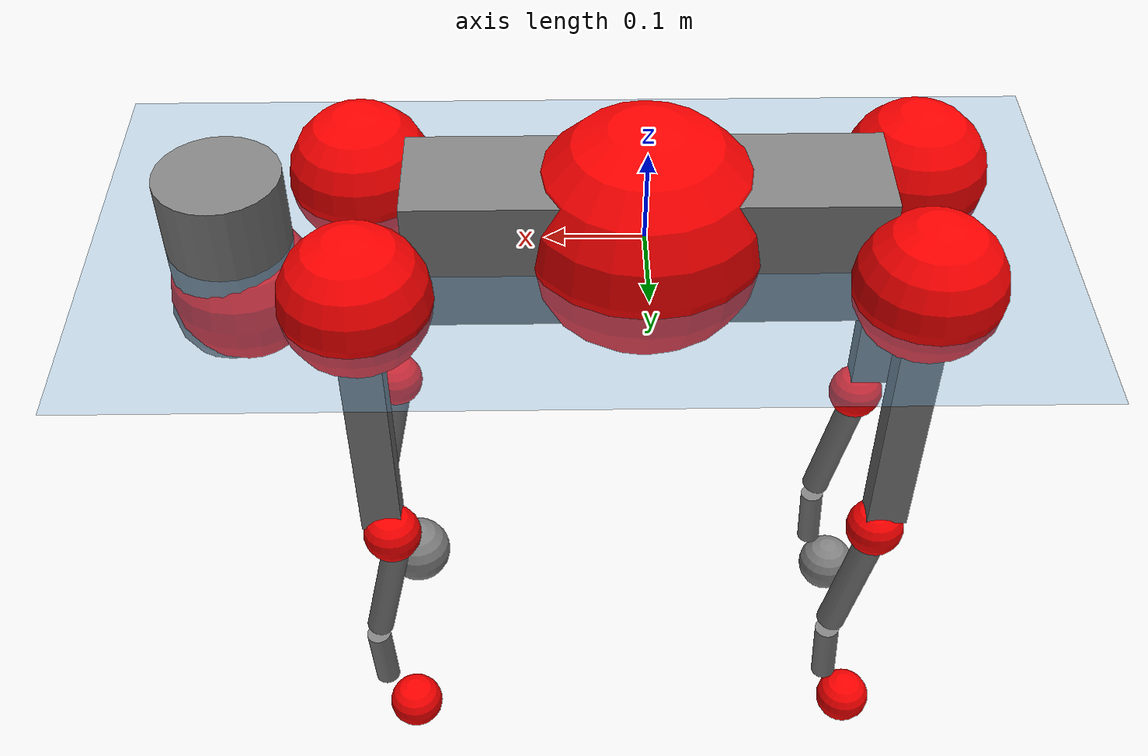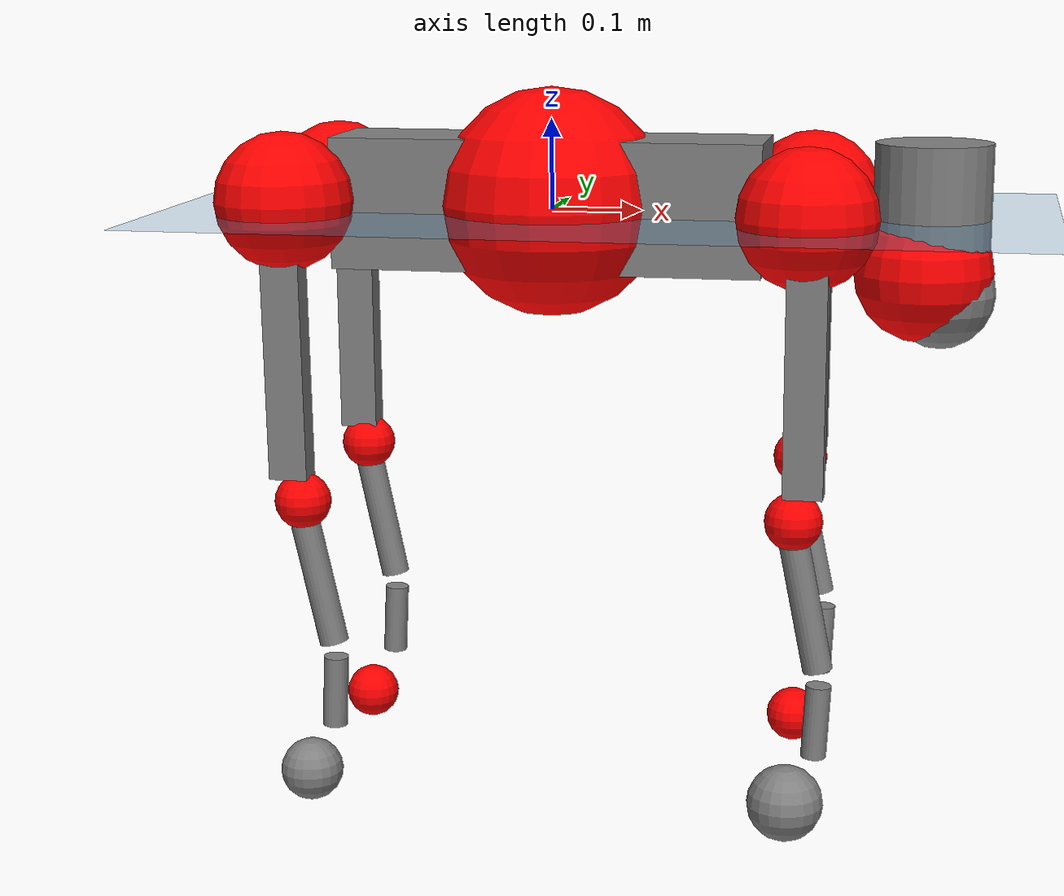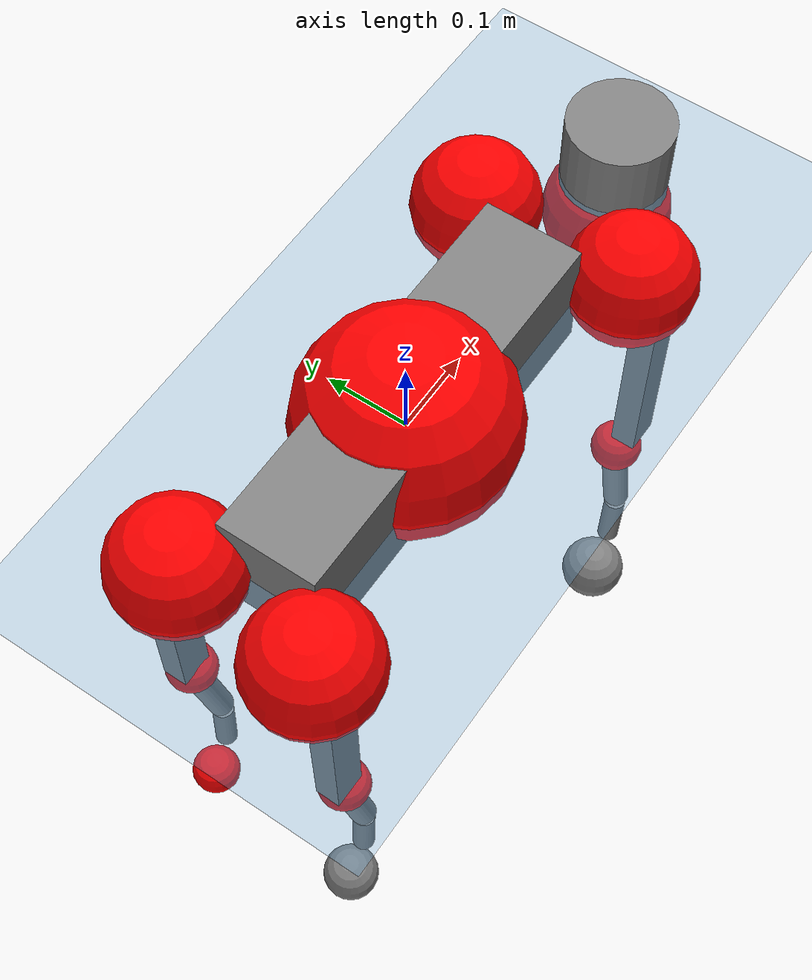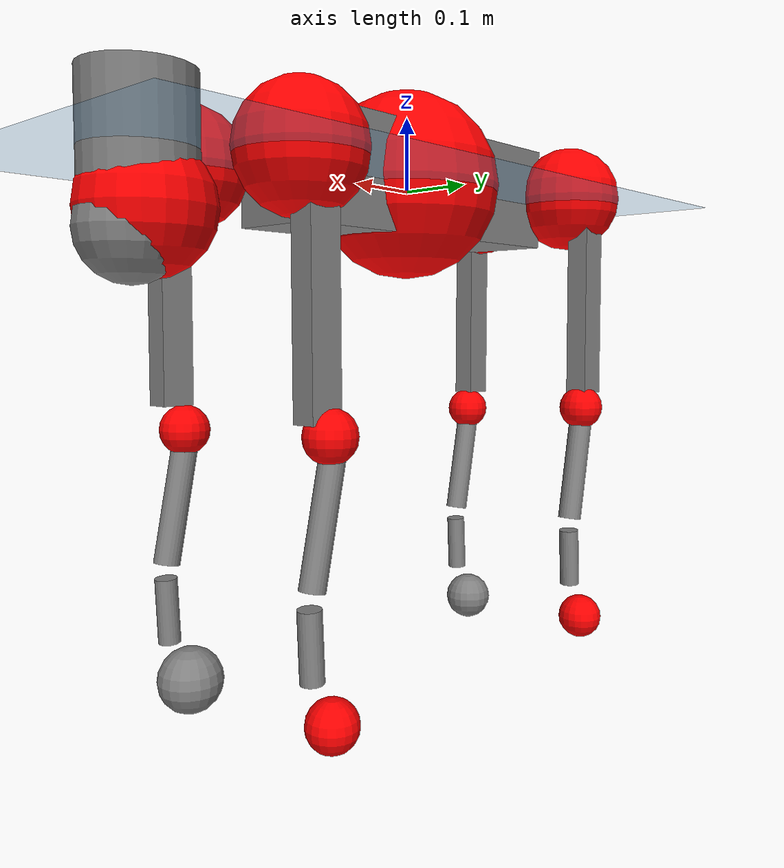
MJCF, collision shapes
<mujoco model="go2">
  <compiler angle="radian" assetdir="assets" balanceinertia="true" inertiafromgeom="false"/>

  <option timestep="0.005" density="1.2" viscosity="2e-05"/>

  <size nkey="1"/>

  <visual>
    <quality shadowsize="8192"/>
    <map shadowclip="0.5"/>
  </visual>

  <default>
    <default class="/">
      <geom contype="0" conaffinity="0" group="1" solref="-1000 -80"/>
      <site size="0.01 0.005 0.005" group="5"/>
      <general forcelimited="true" biastype="affine" gainprm="20" biasprm="0 -20 -0.5"/>
      <default class="go2">
        <joint armature="0.01" damping="0.01" frictionloss="0.2"/>
        <geom condim="1" margin="0.001"/>
        <default class="visual">
          <geom type="mesh" group="2"/>
        </default>
        <default class="collision">
          <geom group="3"/>
          <default class="foot">
            <geom size="0.022 0 0" condim="6" priority="1" friction="0.8 0.02 0.01" solimp="0.015 1 0.022"/>
          </default>
        </default>
        <default class="reward_collision_sphere">
          <geom group="5" rgba="1 0 0 1"/>
        </default>
      </default>
    </default>
  </default>

  <asset>
    <texture type="skybox" colorspace="auto" name="//unnamed_texture_0" builtin="gradient" rgb1="0.95 0.95 0.95" rgb2="0.95 0.95 0.95" width="100" height="600"/>
    <texture type="2d" colorspace="auto" name="texplane" builtin="checker" rgb1="0.345 0.575 0.748" rgb2="0.345 0.575 0.748" markrgb="1 1 1" width="512" height="512"/>
    <material name="MatPlane" class="/" texture="texplane" texuniform="true" texrepeat="2 2" specular="0.9"/>
    <material name="metal" class="/" rgba="0.9 0.95 0.95 1"/>
    <material name="black" class="/" rgba="0 0 0 1"/>
    <material name="white" class="/"/>
    <material name="gray" class="/" rgba="0.671705 0.692426 0.77427 1"/>
    <mesh name="base_0" class="/" file="base_0.obj"/>
    <mesh name="base_1" class="/" file="base_1.obj"/>
    <mesh name="base_2" class="/" file="base_2.obj"/>
    <mesh name="base_3" class="/" file="base_3.obj"/>
    <mesh name="base_4" class="/" file="base_4.obj"/>
    <mesh name="hip_0" class="/" file="hip_0.obj"/>
    <mesh name="hip_1" class="/" file="hip_1.obj"/>
    <mesh name="thigh_0" class="/" file="thigh_0.obj"/>
    <mesh name="thigh_1" class="/" file="thigh_1.obj"/>
    <mesh name="thigh_mirror_0" class="/" file="thigh_mirror_0.obj"/>
    <mesh name="thigh_mirror_1" class="/" file="thigh_mirror_1.obj"/>
    <mesh name="calf_0" class="/" file="calf_0.obj"/>
    <mesh name="calf_1" class="/" file="calf_1.obj"/>
    <mesh name="calf_mirror_0" class="/" file="calf_mirror_0.obj"/>
    <mesh name="calf_mirror_1" class="/" file="calf_mirror_1.obj"/>
    <mesh name="foot" class="/" file="foot.obj"/>
  </asset>

  <worldbody>
    <geom name="floor" class="/" size="100 100 0.125" type="plane" group="0" material="MatPlane"/>
    <light name="toplight_shadow" class="/" pos="0 0 5" dir="0.0990148 0.0990148 -0.990148" type="directional" ambient="0.04 0.04 0.04" diffuse="0.55 0.55 0.55" specular="0.12 0.12 0.12"/>
    <light name="toplight_fill" class="/" pos="0 0 5" dir="0.0990148 0.0990148 -0.990148" type="directional" castshadow="false" ambient="0.04 0.04 0.04" diffuse="0.3 0.3 0.3" specular="0.08 0.08 0.08"/>
    <body name="trunk" childclass="go2" pos="0.000112047 -0.00104228 0.00802677" quat="1 8.48379e-05 -3.36777e-07 9.44767e-05">
      <inertial pos="0.0402303 0.0108157 -0.0129629" quat="-0.00146538 0.713418 0.0168928 0.700534" mass="14.4161" diaginertia="0.600205 0.0334797 0.174268"/>
      <joint name="//unnamed_joint_0" type="free" armature="0" damping="0" frictionloss="0"/>
      <geom name="//unnamed_geom_1" class="visual" material="black" mesh="base_0"/>
      <geom name="//unnamed_geom_2" class="visual" material="black" mesh="base_1"/>
      <geom name="//unnamed_geom_3" class="visual" material="black" mesh="base_2"/>
      <geom name="//unnamed_geom_4" class="visual" material="white" mesh="base_3"/>
      <geom name="//unnamed_geom_5" class="visual" material="gray" mesh="base_4"/>
      <geom name="trunk_1" class="collision" size="0.239952 0.0596372 0.0727127" type="box"/>
      <geom name="trunk_2" class="collision" size="0.0637831 0.0574047" pos="0.419775 0 0.0152452" type="cylinder"/>
      <geom name="trunk_3" class="collision" size="0.0599561" pos="0.431558 0 -0.0914715"/>
      <geom name="//unnamed_geom_9" class="reward_collision_sphere" size="0.127566"/>
      <geom name="//unnamed_geom_10" class="reward_collision_sphere" size="0.0765397" pos="0.41241 0 -0.0686036"/>
      <site name="imu" pos="0.0266313 0.00353473 0.0111139" size="0.0127566"/>
      <camera name="track" pos="0 -1.65913 0" quat="0.707107 0.707107 0 0" mode="trackcom"/>
      <camera name="ego_camera" pos="0.459543 0 0.0686036" quat="-0.5 -0.5 0.5 0.5"/>
      <body name="FL_hip" pos="0.284142 0.0426081 -0.0017301" quat="0.999996 0.00172158 0.00072661 0.00221331">
        <inertial pos="-0.0188644 0.00728803 -0.000970769" quat="0.483308 0.516697 0.520794 0.477715" mass="1.58529" diaginertia="0.00693271 0.000227166 0.00373599"/>
        <joint name="FL_hip_joint" pos="0 0 0" axis="0.999057 0.0113223 -0.0419196" stiffness="0.0140461" range="-1.05983 0.920906" armature="0.00517047" damping="0.0652164" frictionloss="0.272725"/>
        <geom name="//unnamed_geom_11" class="visual" material="metal" mesh="hip_0"/>
        <geom name="//unnamed_geom_12" class="visual" material="gray" mesh="hip_1"/>
        <geom name="//unnamed_geom_13" class="collision" size="0.0586804 0.0255132" pos="0 0.0663652 0" quat="0.707107 0.707107 0 0" type="cylinder"/>
        <geom name="//unnamed_geom_14" class="reward_collision_sphere" size="0.0765397" pos="0 0.0580695 0"/>
        <body name="FL_thigh" pos="-0.000703654 0.078404 -0.000392258" quat="1 0.00016378 0.000317303 0.000191924">
          <inertial pos="-0.0101226 -0.0176634 -0.0610641" quat="0.825549 0.0964636 -0.0151233 0.555819" mass="2.19679" diaginertia="0.047352 0.00230624 0.00740224"/>
          <joint name="FL_thigh_joint" pos="0 0 0" axis="-0.0553002 0.998053 -0.0288417" range="-1.5225 3.4632" armature="0.0120831" damping="0.0234446" frictionloss="0.391374"/>
          <geom name="//unnamed_geom_15" class="visual" material="metal" mesh="thigh_0"/>
          <geom name="//unnamed_geom_16" class="visual" material="gray" mesh="thigh_1"/>
          <geom name="//unnamed_geom_17" class="collision" size="0.135858 0.0156268 0.0216862" pos="0 0 -0.162362" quat="0.707107 0 0.707107 0" type="box"/>
          <body name="FL_calf" pos="-0.00958537 0.00987211 -0.31187" quat="0.999989 -0.00393989 -0.00252199 -0.00104877">
            <inertial pos="0.0114706 0.000600776 -0.213209" quat="0.704416 0.00978318 -0.00815055 0.709673" mass="0.533393" diaginertia="0.0110847 0.000577321 0.000482777"/>
            <joint name="FL_calf_joint" pos="0 0 0" axis="0.0309589 0.996932 0.0718911" range="-2.57071 -0.923348" armature="0.00935267" damping="0.056685" frictionloss="0.16291"/>
            <geom name="//unnamed_geom_18" class="visual" material="gray" mesh="calf_0"/>
            <geom name="//unnamed_geom_19" class="visual" material="black" mesh="calf_1"/>
            <geom name="FL_calf0" class="collision" size="0.0153079 0.0765397" pos="0.0117831 0 -0.0914715" quat="0.994493 0 -0.104807 0" type="cylinder"/>
            <geom name="//unnamed_geom_21" class="collision" size="0.0140323 0.041459" pos="0.0294579 0 -0.22563" quat="0.999688 0 0.0249974 0" type="cylinder"/>
            <geom name="//unnamed_geom_22" class="visual" pos="0 0 -0.324724" quat="1 0 0 0" material="black" mesh="foot"/>
            <geom name="FL_foot" class="foot" size="0.0275127" pos="-0.00294579 0 -0.324724"/>
            <geom name="//unnamed_geom_24" class="reward_collision_sphere" size="0.0318915"/>
            <geom name="//unnamed_geom_25" class="reward_collision_sphere" size="0.0318915" pos="-0.00294579 0 -0.324724"/>
            <site name="FL_foot" class="foot" pos="-0.00294579 0 -0.324724" size="0.0127566"/>
          </body>
        </body>
      </body>
      <body name="FR_hip" pos="0.292246 -0.040259 -0.000446343" quat="1 -2.73368e-05 5.60965e-05 1.60752e-05">
        <inertial pos="-0.0184913 -0.00127795 9.81678e-05" quat="0.492723 0.50873 0.502008 0.496393" mass="1.3207" diaginertia="0.00592869 0.00019608 0.00362759"/>
        <joint name="FR_hip_joint" pos="0 0 0" axis="0.99978 0.00730007 0.0196685" stiffness="0.0182979" range="-0.824942 1.02685" armature="0.0190862" damping="0" frictionloss="0.393039"/>
        <geom name="//unnamed_geom_26" class="visual" pos="0 -6.05421e-09 -2.59677e-07" quat="4.63268e-05 1 0 0" material="metal" mesh="hip_0"/>
        <geom name="//unnamed_geom_27" class="visual" pos="0 -9.81459e-09 6.42281e-07" quat="4.63268e-05 1 0 0" material="gray" mesh="hip_1"/>
        <geom name="//unnamed_geom_28" class="collision" size="0.0586804 0.0255132" pos="0 -0.0663652 0" quat="0.707107 0.707107 0 0" type="cylinder"/>
        <geom name="//unnamed_geom_29" class="reward_collision_sphere" size="0.0765397" pos="0 -0.0580695 0"/>
        <body name="FR_thigh" pos="0.00491435 -0.0909356 0.00567142" quat="0.999999 -0.000553173 -6.72291e-05 -0.000830419">
          <inertial pos="-0.00562651 0.0175907 -0.0500712" quat="0.543919 -0.0676669 0.103555 0.82997" mass="3.05002" diaginertia="0.04588 0.00231985 0.00751638"/>
          <joint name="FR_thigh_joint" pos="0 0 0" axis="0.0291113 -0.998976 -0.034631" stiffness="0.0249108" range="-3.74397 1.41847" armature="0.0119844" damping="0.0536703" frictionloss="0.0781469"/>
          <geom name="//unnamed_geom_30" class="visual" material="metal" mesh="thigh_mirror_0"/>
          <geom name="//unnamed_geom_31" class="visual" material="gray" mesh="thigh_mirror_1"/>
          <geom name="//unnamed_geom_32" class="collision" size="0.135858 0.0156268 0.0216862" pos="0 0 -0.162362" quat="0.707107 0 0.707107 0" type="box"/>
          <body name="FR_calf" pos="-0.0106693 0.0115894 -0.329293" quat="1 -3.64591e-05 9.92033e-05 -8.63203e-05">
            <inertial pos="0.00783917 -0.000174811 -0.227117" quat="0.715296 -0.0318626 0.00805569 0.698048" mass="0.501927" diaginertia="0.0118357 0.000636675 0.000437164"/>
            <joint name="FR_calf_joint" pos="0 0 0" axis="0.0132641 -0.999866 -0.00962966" range="0.972783 2.5773" armature="0.0148735" damping="0.00709663" frictionloss="0.411187"/>
            <geom name="//unnamed_geom_33" class="visual" material="gray" mesh="calf_mirror_0"/>
            <geom name="//unnamed_geom_34" class="visual" material="black" mesh="calf_mirror_1"/>
            <geom name="FR_calf0" class="collision" size="0.0165836 0.0765397" pos="0.0147289 0 -0.0914715" quat="0.995004 0 -0.0998334 0" type="cylinder"/>
            <geom name="//unnamed_geom_36" class="collision" size="0.0140323 0.041459" pos="0.0294579 0 -0.22563" quat="0.999688 0 0.0249974 0" type="cylinder"/>
            <geom name="//unnamed_geom_37" class="visual" pos="0 0 -0.324724" quat="1 0 0 0" material="black" mesh="foot"/>
            <geom name="FR_foot" class="foot" size="0.0427296" pos="-0.00294579 0 -0.324724"/>
            <geom name="//unnamed_geom_39" class="reward_collision_sphere" size="0.0318915"/>
            <geom name="//unnamed_geom_40" class="reward_collision_sphere" size="0.0318915" pos="-0.00294579 0 -0.324724"/>
            <site name="FR_foot" class="foot" pos="-0.00294579 0 -0.324724" size="0.0127566"/>
          </body>
        </body>
      </body>
      <body name="RL_hip" pos="-0.272284 0.0337541 0.00130529" quat="0.999999 0.000744204 -0.00067841 0.000999772">
        <inertial pos="0.00282929 -0.00958891 0.000735503" quat="0.525201 0.481624 0.47832 0.513237" mass="1.41281" diaginertia="0.00722832 0.000223051 0.00504851"/>
        <joint name="RL_hip_joint" pos="0 0 0" axis="-0.999828 -0.0183282 -0.00273346" stiffness="0.0204595" range="-1.12915 1.32448" armature="0.0203004" damping="0.0417218" frictionloss="0.243457"/>
        <geom name="//unnamed_geom_41" class="visual" pos="4.49794e-10 0 8.817e-08" quat="4.63268e-05 0 1 0" material="metal" mesh="hip_0"/>
        <geom name="//unnamed_geom_42" class="visual" pos="7.2917e-10 0 7.81942e-08" quat="4.63268e-05 0 1 0" material="gray" mesh="hip_1"/>
        <geom name="//unnamed_geom_43" class="collision" size="0.0586804 0.0255132" pos="0 0.0663652 0" quat="0.707107 0.707107 0 0" type="cylinder"/>
        <geom name="//unnamed_geom_44" class="reward_collision_sphere" size="0.0765397" pos="0 0.0580695 0"/>
        <body name="RL_thigh" pos="0.00734023 0.0928108 0.00246515" quat="1 -1.73558e-05 9.1346e-05 1.22166e-05">
          <inertial pos="-0.00463515 -0.0280757 -0.0488722" quat="0.829157 0.0839713 -0.0209315 0.552277" mass="2.37048" diaginertia="0.0408156 0.00248079 0.00691914"/>
          <joint name="RL_thigh_joint" pos="0 0 0" axis="-0.0126847 0.998761 -0.0481196" range="-0.495974 4.53871" armature="0.0164338" damping="0.0352739" frictionloss="0.206327"/>
          <geom name="//unnamed_geom_45" class="visual" material="metal" mesh="thigh_0"/>
          <geom name="//unnamed_geom_46" class="visual" material="gray" mesh="thigh_1"/>
          <geom name="//unnamed_geom_47" class="collision" size="0.135858 0.0156268 0.0216862" pos="0 0 -0.162362" quat="0.707107 0 0.707107 0" type="box"/>
          <body name="RL_calf" pos="0.00745479 0.00134228 -0.320563" quat="0.999998 0.000636121 0.00124354 -0.00172793">
            <inertial pos="0.00913254 -3.02016e-06 -0.216947" quat="0.689563 -0.0288042 0.0502899 0.721903" mass="0.509124" diaginertia="0.0105806 0.000582115 0.000517549"/>
            <joint name="RL_calf_joint" pos="0 0 0" axis="0.0436731 0.999045 -0.00104785" range="-2.75317 -0.84712" armature="0.0180336" damping="0.00977459" frictionloss="0.159328"/>
            <geom name="//unnamed_geom_48" class="visual" material="gray" mesh="calf_0"/>
            <geom name="//unnamed_geom_49" class="visual" material="black" mesh="calf_1"/>
            <geom name="RL_calf0" class="collision" size="0.0165836 0.0765397" pos="0.0147289 0 -0.0914715" quat="0.995004 0 -0.0998334 0" type="cylinder"/>
            <geom name="//unnamed_geom_51" class="collision" size="0.0140323 0.041459" pos="0.0294579 0 -0.22563" quat="0.999688 0 0.0249974 0" type="cylinder"/>
            <geom name="//unnamed_geom_52" class="visual" pos="0 0 -0.324724" quat="1 0 0 0" material="black" mesh="foot"/>
            <geom name="RL_foot" class="foot" size="0.0141193" pos="-0.00294579 0 -0.324724"/>
            <geom name="//unnamed_geom_54" class="reward_collision_sphere" size="0.0318915"/>
            <geom name="//unnamed_geom_55" class="reward_collision_sphere" size="0.0318915" pos="-0.00294579 0 -0.324724"/>
            <site name="RL_foot" class="foot" pos="-0.00294579 0 -0.324724" size="0.0127566"/>
          </body>
        </body>
      </body>
      <body name="RR_hip" pos="-0.28384 -0.0273098 0.00521854" quat="0.99999 0.000897819 -0.00399278 -0.00194396">
        <inertial pos="0.0194097 -0.00298986 -0.0104835" quat="0.498722 0.506902 0.488767 0.505405" mass="1.51383" diaginertia="0.00668078 0.000249669 0.00488345"/>
        <joint name="RR_hip_joint" pos="0 0 0" axis="-0.999985 -0.00199645 0.00513274" stiffness="0.0281725" range="-0.8477 0.795189" armature="0.0125929" damping="0.0458737" frictionloss="0.271923"/>
        <geom name="//unnamed_geom_56" class="visual" pos="-4.72067e-10 -6.05421e-09 3.47847e-07" quat="2.14617e-09 4.63268e-05 4.63268e-05 -1" material="metal" mesh="hip_0"/>
        <geom name="//unnamed_geom_57" class="visual" pos="-6.74081e-10 -9.81459e-09 -5.64087e-07" quat="2.14617e-09 4.63268e-05 4.63268e-05 -1" material="gray" mesh="hip_1"/>
        <geom name="//unnamed_geom_58" class="collision" size="0.0586804 0.0255132" pos="0 -0.0663652 0" quat="0.707107 0.707107 0 0" type="cylinder"/>
        <geom name="//unnamed_geom_59" class="reward_collision_sphere" size="0.0765397" pos="0 -0.0580695 0"/>
        <body name="RR_thigh" pos="0.000893539 -0.0737169 -0.0114093" quat="1 -5.1933e-05 2.69695e-05 -3.55747e-05">
          <inertial pos="-0.0137357 0.0204833 -0.0512129" quat="0.551599 -0.0186837 0.0848398 0.829573" mass="3.22548" diaginertia="0.0543005 0.00271462 0.00824715"/>
          <joint name="RR_thigh_joint" pos="0 0 0" axis="0.0111405 -0.998839 -0.0468707" stiffness="0.00015354" range="-4.52695 0.553636" armature="0.0156182" damping="0.0244823" frictionloss="0.273341"/>
          <geom name="//unnamed_geom_60" class="visual" material="metal" mesh="thigh_mirror_0"/>
          <geom name="//unnamed_geom_61" class="visual" material="gray" mesh="thigh_mirror_1"/>
          <geom name="//unnamed_geom_62" class="collision" size="0.135858 0.0156268 0.0216862" pos="0 0 -0.162362" quat="0.707107 0 0.707107 0" type="box"/>
          <body name="RR_calf" pos="0.0110917 0.00194722 -0.3258" quat="0.999996 0.00264356 0.00081865 0.00018586">
            <inertial pos="0.0136109 0.000194827 -0.215082" quat="0.685565 0.0106925 -0.0395551 0.726857" mass="0.500664" diaginertia="0.0111965 0.000506691 0.000444596"/>
            <joint name="RR_calf_joint" pos="0 0 0" axis="-0.0141431 -0.999812 0.0133009" range="0.871141 2.78898" armature="0.0206655" damping="0" frictionloss="0.255541"/>
            <geom name="//unnamed_geom_63" class="visual" material="gray" mesh="calf_mirror_0"/>
            <geom name="//unnamed_geom_64" class="visual" material="black" mesh="calf_mirror_1"/>
            <geom name="RR_calf0" class="collision" size="0.0165836 0.0765397" pos="0.0147289 0 -0.0914715" quat="0.995004 0 -0.0998334 0" type="cylinder"/>
            <geom name="//unnamed_geom_66" class="collision" size="0.0140323 0.041459" pos="0.0294579 0 -0.22563" quat="0.999688 0 0.0249974 0" type="cylinder"/>
            <geom name="//unnamed_geom_67" class="visual" pos="0 0 -0.324724" quat="1 0 0 0" material="black" mesh="foot"/>
            <geom name="RR_foot" class="foot" size="0.0360267" pos="-0.00294579 0 -0.324724"/>
            <geom name="//unnamed_geom_69" class="reward_collision_sphere" size="0.0318915"/>
            <geom name="//unnamed_geom_70" class="reward_collision_sphere" size="0.0318915" pos="-0.00294579 0 -0.324724"/>
            <site name="RR_foot" class="foot" pos="-0.00294579 0 -0.324724" size="0.0127566"/>
          </body>
        </body>
      </body>
    </body>
  </worldbody>

  <contact>
    <pair class="/" geom1="floor" geom2="FL_foot" name="//unnamed_contact_0"/>
    <pair class="/" geom1="floor" geom2="FR_foot" name="//unnamed_contact_1"/>
    <pair class="/" geom1="floor" geom2="RL_foot" name="//unnamed_contact_2"/>
    <pair class="/" geom1="floor" geom2="RR_foot" name="//unnamed_contact_3"/>
  </contact>

  <actuator>
    <general name="FL_hip" class="/" joint="FL_hip_joint" forcerange="-31.4877 31.4877" gainprm="24.3801" biasprm="0 -24.3801 -0.670821"/>
    <general name="FL_thigh" class="/" joint="FL_thigh_joint" forcerange="-37.6078 37.6078" gainprm="24.3801" biasprm="0 -24.3801 -0.670821"/>
    <general name="FL_calf" class="/" joint="FL_calf_joint" forcerange="-63.2947 63.2947" gainprm="24.3801" biasprm="0 -24.3801 -0.670821"/>
    <general name="FR_hip" class="/" joint="FR_hip_joint" forcerange="-38.2618 38.2618" gainprm="24.3801" biasprm="0 -24.3801 -0.670821"/>
    <general name="FR_thigh" class="/" joint="FR_thigh_joint" forcerange="-24.3673 24.3673" gainprm="24.3801" biasprm="0 -24.3801 -0.670821"/>
    <general name="FR_calf" class="/" joint="FR_calf_joint" forcerange="-80.6981 80.6981" gainprm="24.3801" biasprm="0 -24.3801 -0.670821"/>
    <general name="RL_hip" class="/" joint="RL_hip_joint" forcerange="-30.4527 30.4527" gainprm="24.3801" biasprm="0 -24.3801 -0.670821"/>
    <general name="RL_thigh" class="/" joint="RL_thigh_joint" forcerange="-42.3576 42.3576" gainprm="24.3801" biasprm="0 -24.3801 -0.670821"/>
    <general name="RL_calf" class="/" joint="RL_calf_joint" forcerange="-62.7276 62.7276" gainprm="24.3801" biasprm="0 -24.3801 -0.670821"/>
    <general name="RR_hip" class="/" joint="RR_hip_joint" forcerange="-34.2314 34.2314" gainprm="24.3801" biasprm="0 -24.3801 -0.670821"/>
    <general name="RR_thigh" class="/" joint="RR_thigh_joint" forcerange="-43.9489 43.9489" gainprm="24.3801" biasprm="0 -24.3801 -0.670821"/>
    <general name="RR_calf" class="/" joint="RR_calf_joint" forcerange="-36.5515 36.5515" gainprm="24.3801" biasprm="0 -24.3801 -0.670821"/>
  </actuator>

  <sensor>
    <gyro site="imu" name="imu_angular_velocity"/>
    <velocimeter site="imu" name="imu_linear_velocity"/>
    <framelinvel objtype="site" objname="FL_foot" name="FL_foot_global_linear_velocity"/>
    <framelinvel objtype="site" objname="FR_foot" name="FR_foot_global_linear_velocity"/>
    <framelinvel objtype="site" objname="RL_foot" name="RL_foot_global_linear_velocity"/>
    <framelinvel objtype="site" objname="RR_foot" name="RR_foot_global_linear_velocity"/>
  </sensor>

  <keyframe>
    <key name="home" qpos="0 0 0.325 1 0 0 0 0.1 0.8 -1.5 -0.1 -0.8 1.5 -0.1 0.8 -1.5 0.1 -0.8 1.5"/>
  </keyframe>
</mujoco>
